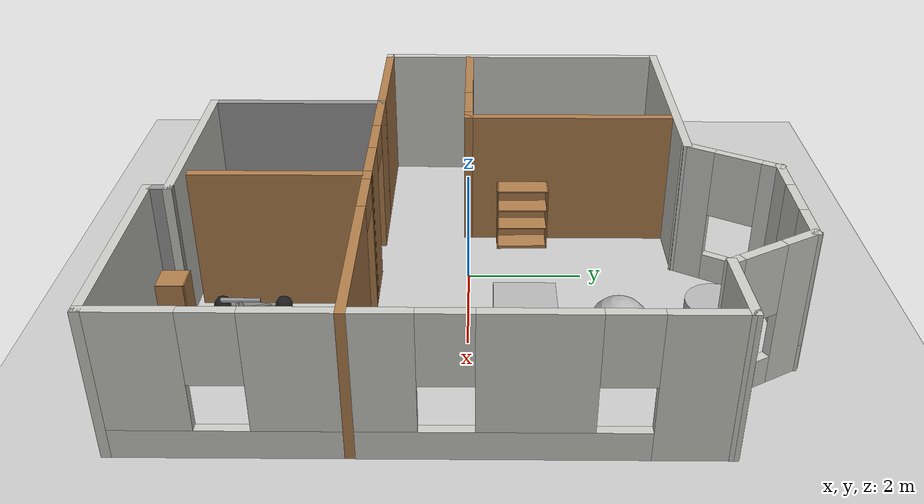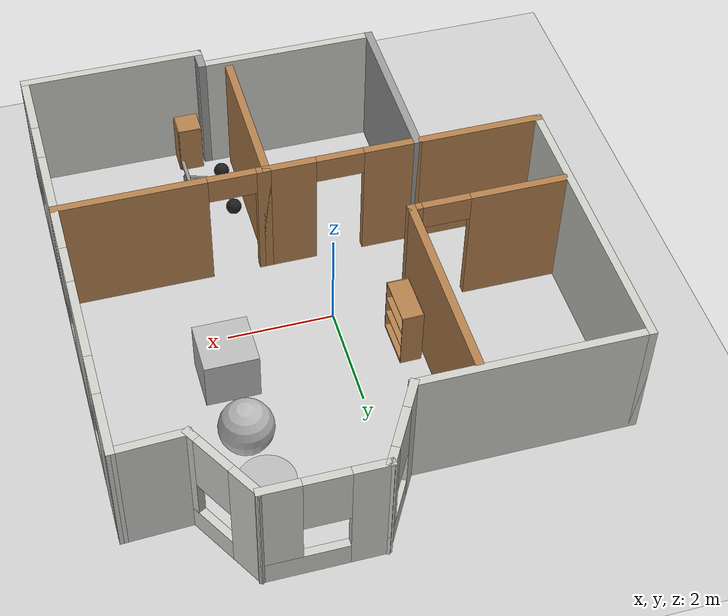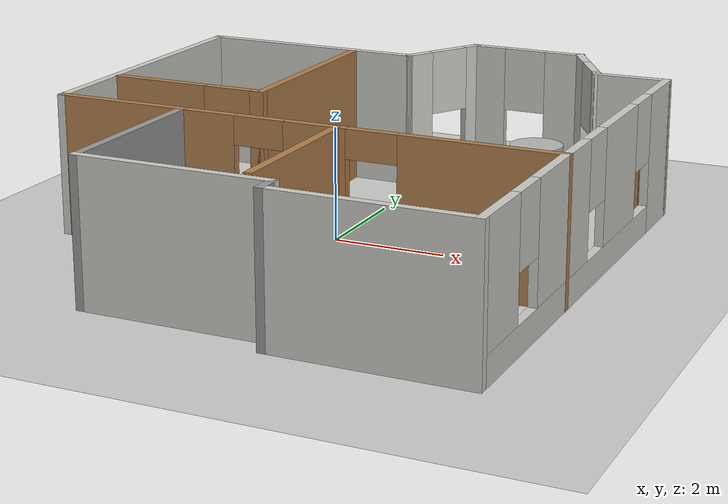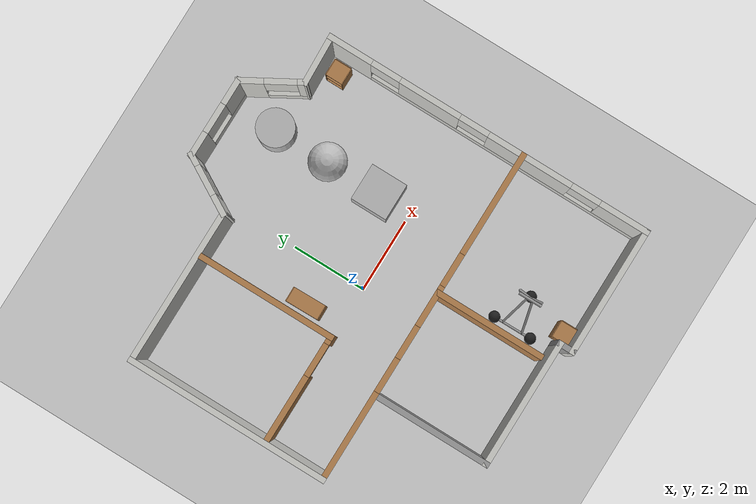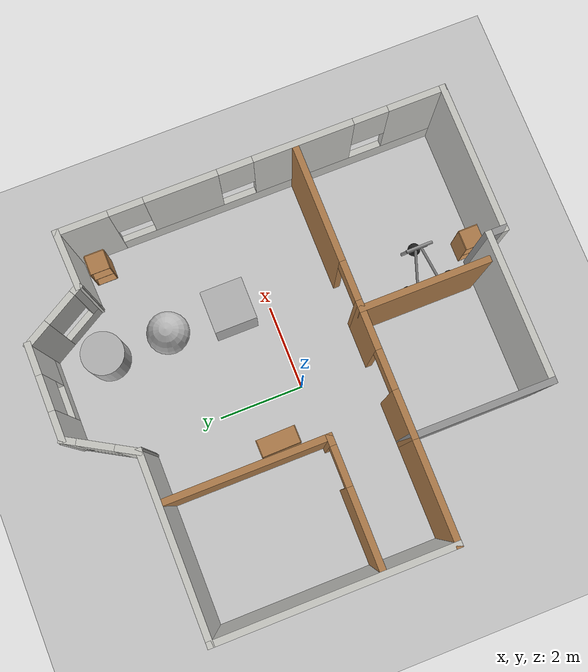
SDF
<sdf version="1.6">
 <world name="default">
  <light name="sun" type="directional">
   <pose>0 0 15 0 -0 0</pose>
   <diffuse>1 1 1 1</diffuse>
   <specular>0.1 0.1 0.1 1</specular>
   <attenuation>
    <range>1000</range>
    <constant>0.9</constant>
    <linear>0.01</linear>
    <quadratic>0.001</quadratic>
   </attenuation>
   <direction>-0.5 0.5 -1</direction>
  </light>
  <model name="ground_plane">
   <static>1</static>
   <link name="link">
    <collision name="collision">
     <geometry><plane><normal>0 0 1</normal><size>100 100</size></plane></geometry>
     <surface><friction><ode><mu>100</mu><mu2>50</mu2></ode></friction></surface>
    </collision>
    <visual name="visual">
     <cast_shadows>0</cast_shadows>
     <geometry><plane><normal>0 0 1</normal><size>100 100</size></plane></geometry>
     <material>
      <script><uri>file://media/materials/scripts/gazebo.material</uri><name>Gazebo/Grey</name></script>
     </material>
    </visual>
   </link>
  </model>
  <gravity>0 0 -9.8</gravity>
  <magnetic_field>6e-06 2.3e-05 -4.2e-05</magnetic_field>
  <atmosphere type="adiabatic"/>
  <physics name="default_physics" default="0" type="ode">
   <max_step_size>0.001</max_step_size>
   <real_time_factor>1</real_time_factor>
   <real_time_update_rate>1000</real_time_update_rate>
  </physics>
  <scene><ambient>0.4 0.4 0.4 1</ambient><background>0.7 0.7 0.7 1</background><shadows>1</shadows></scene>
  <spherical_coordinates>
   <surface_model>EARTH_WGS84</surface_model>
   <latitude_deg>0</latitude_deg>
   <longitude_deg>0</longitude_deg>
   <elevation>0</elevation>
   <heading_deg>0</heading_deg>
  </spherical_coordinates>
  <model name="badrs">
   <pose>0.14345 0.028465 0 0 -0 0</pose>
   <link name="Wall_21">
    <pose>4.52353 -0.681546 0 0 0 -1.5708</pose>
    <visual name="Wall_21_Visual_0">
     <pose>-3.88245 0 1.25 0 -0 0</pose>
     <geometry><box><size>1.2351 0.15 2.5</size></box></geometry>
     <material>
      <script><uri>file://media/materials/scripts/gazebo.material</uri><name>Gazebo/CeilingTiled</name></script>
      <ambient>1 1 1 1</ambient>
     </material>
     <meta><layer>0</layer></meta>
    </visual>
    <collision name="Wall_21_Collision_0">
     <geometry><box><size>1.2351 0.15 2.5</size></box></geometry>
     <pose>-3.88245 0 1.25 0 -0 0</pose>
    </collision>
    <visual name="Wall_21_Visual_1">
     <pose>0.617551 0 0.25 0 -0 0</pose>
     <geometry><box><size>7.7649 0.15 0.5</size></box></geometry>
     <material>
      <script><uri>file://media/materials/scripts/gazebo.material</uri><name>Gazebo/CeilingTiled</name></script>
      <ambient>1 1 1 1</ambient>
     </material>
     <meta><layer>0</layer></meta>
    </visual>
    <collision name="Wall_21_Collision_1">
     <geometry><box><size>7.7649 0.15 0.5</size></box></geometry>
     <pose>0.617551 0 0.25 0 -0 0</pose>
    </collision>
    <visual name="Wall_21_Visual_2">
     <pose>-1.62599 0 1.5 0 -0 0</pose>
     <geometry><box><size>1.67781 0.15 2</size></box></geometry>
     <material>
      <script><uri>file://media/materials/scripts/gazebo.material</uri><name>Gazebo/CeilingTiled</name></script>
      <ambient>1 1 1 1</ambient>
     </material>
     <meta><layer>0</layer></meta>
    </visual>
    <collision name="Wall_21_Collision_2">
     <geometry><box><size>1.67781 0.15 2</size></box></geometry>
     <pose>-1.62599 0 1.5 0 -0 0</pose>
    </collision>
    <visual name="Wall_21_Visual_3">
     <pose>1.17301 0 1.5 0 -0 0</pose>
     <geometry><box><size>2.3202 0.15 2</size></box></geometry>
     <material>
      <script><uri>file://media/materials/scripts/gazebo.material</uri><name>Gazebo/CeilingTiled</name></script>
      <ambient>1 1 1 1</ambient>
     </material>
     <meta><layer>0</layer></meta>
    </visual>
    <collision name="Wall_21_Collision_3">
     <geometry><box><size>2.3202 0.15 2</size></box></geometry>
     <pose>1.17301 0 1.5 0 -0 0</pose>
    </collision>
    <visual name="Wall_21_Visual_4">
     <pose>3.81656 0 1.5 0 -0 0</pose>
     <geometry><box><size>1.36689 0.15 2</size></box></geometry>
     <material>
      <script><uri>file://media/materials/scripts/gazebo.material</uri><name>Gazebo/CeilingTiled</name></script>
      <ambient>1 1 1 1</ambient>
     </material>
     <meta><layer>0</layer></meta>
    </visual>
    <collision name="Wall_21_Collision_4">
     <geometry><box><size>1.36689 0.15 2</size></box></geometry>
     <pose>3.81656 0 1.5 0 -0 0</pose>
    </collision>
    <visual name="Wall_21_Visual_5">
     <pose>-2.8649 0 1.9 0 -0 0</pose>
     <geometry><box><size>0.8 0.15 1.2</size></box></geometry>
     <material>
      <script><uri>file://media/materials/scripts/gazebo.material</uri><name>Gazebo/CeilingTiled</name></script>
      <ambient>1 1 1 1</ambient>
     </material>
     <meta><layer>0</layer></meta>
    </visual>
    <collision name="Wall_21_Collision_5">
     <geometry><box><size>0.8 0.15 1.2</size></box></geometry>
     <pose>-2.8649 0 1.9 0 -0 0</pose>
    </collision>
    <visual name="Wall_21_Visual_6">
     <pose>-0.38709 0 1.9 0 -0 0</pose>
     <geometry><box><size>0.8 0.15 1.2</size></box></geometry>
     <material>
      <script><uri>file://media/materials/scripts/gazebo.material</uri><name>Gazebo/CeilingTiled</name></script>
      <ambient>1 1 1 1</ambient>
     </material>
     <meta><layer>0</layer></meta>
    </visual>
    <collision name="Wall_21_Collision_6">
     <geometry><box><size>0.8 0.15 1.2</size></box></geometry>
     <pose>-0.38709 0 1.9 0 -0 0</pose>
    </collision>
    <visual name="Wall_21_Visual_7">
     <pose>2.73311 0 1.9 0 -0 0</pose>
     <geometry><box><size>0.8 0.15 1.2</size></box></geometry>
     <material>
      <script><uri>file://media/materials/scripts/gazebo.material</uri><name>Gazebo/CeilingTiled</name></script>
      <ambient>1 1 1 1</ambient>
     </material>
     <meta><layer>0</layer></meta>
    </visual>
    <collision name="Wall_21_Collision_7">
     <geometry><box><size>0.8 0.15 1.2</size></box></geometry>
     <pose>2.73311 0 1.9 0 -0 0</pose>
    </collision>
   </link>
   <link name="Wall_22">
    <collision name="Wall_22_Collision">
     <geometry><box><size>3.5 0.15 2.5</size></box></geometry>
     <pose>0 0 1.25 0 -0 0</pose>
    </collision>
    <visual name="Wall_22_Visual">
     <pose>0 0 1.25 0 -0 0</pose>
     <geometry><box><size>3.5 0.15 2.5</size></box></geometry>
     <material>
      <script><uri>file://media/materials/scripts/gazebo.material</uri><name>Gazebo/CeilingTiled</name></script>
      <ambient>1 1 1 1</ambient>
     </material>
     <meta><layer>0</layer></meta>
    </visual>
    <pose>2.84853 -5.10655 0 0 -0 3.14159</pose>
   </link>
   <link name="Wall_23">
    <collision name="Wall_23_Collision">
     <geometry><box><size>0.5 0.15 2.5</size></box></geometry>
     <pose>0 0 1.25 0 -0 0</pose>
    </collision>
    <visual name="Wall_23_Visual">
     <pose>0 0 1.25 0 -0 0</pose>
     <geometry><box><size>0.5 0.15 2.5</size></box></geometry>
     <material>
      <script><uri>file://media/materials/scripts/gazebo.material</uri><name>Gazebo/Grey</name></script>
      <ambient>1 1 1 1</ambient>
     </material>
     <meta><layer>0</layer></meta>
    </visual>
    <pose>1.17353 -4.93155 0 0 -0 1.5708</pose>
   </link>
   <link name="Wall_24">
    <collision name="Wall_24_Collision">
     <geometry><box><size>3.5 0.15 2.5</size></box></geometry>
     <pose>0 0 1.25 0 -0 0</pose>
    </collision>
    <visual name="Wall_24_Visual">
     <pose>0 0 1.25 0 -0 0</pose>
     <geometry><box><size>3.5 0.15 2.5</size></box></geometry>
     <material>
      <script><uri>file://media/materials/scripts/gazebo.material</uri><name>Gazebo/CeilingTiled</name></script>
      <ambient>1 1 1 1</ambient>
     </material>
     <meta><layer>0</layer></meta>
    </visual>
    <pose>-0.501469 -4.75655 0 0 -0 3.14159</pose>
   </link>
   <link name="Wall_25">
    <collision name="Wall_25_Collision">
     <geometry><box><size>3.25 0.15 2.5</size></box></geometry>
     <pose>0 0 1.25 0 -0 0</pose>
    </collision>
    <visual name="Wall_25_Visual">
     <pose>0 0 1.25 0 -0 0</pose>
     <geometry><box><size>3.25 0.15 2.5</size></box></geometry>
     <material>
      <script><uri>file://media/materials/scripts/gazebo.material</uri><name>Gazebo/Grey</name></script>
      <ambient>1 1 1 1</ambient>
     </material>
     <meta><layer>0</layer></meta>
    </visual>
    <pose>-2.17647 -3.20655 0 0 -0 1.5708</pose>
   </link>
   <link name="Wall_26">
    <pose>-0.751469 -1.65655 0 0 -0 0</pose>
    <visual name="Wall_26_Visual_0">
     <pose>-0.952965 0 1.25 0 -0 0</pose>
     <geometry><box><size>1.09407 0.15 2.5</size></box></geometry>
     <material>
      <script><uri>file://media/materials/scripts/gazebo.material</uri><name>Gazebo/Wood</name></script>
      <ambient>1 1 1 1</ambient>
     </material>
     <meta><layer>0</layer></meta>
    </visual>
    <collision name="Wall_26_Collision_0">
     <geometry><box><size>1.09407 0.15 2.5</size></box></geometry>
     <pose>-0.952965 0 1.25 0 -0 0</pose>
    </collision>
    <visual name="Wall_26_Visual_1">
     <pose>0.997035 0 1.25 0 -0 0</pose>
     <geometry><box><size>1.00593 0.15 2.5</size></box></geometry>
     <material>
      <script><uri>file://media/materials/scripts/gazebo.material</uri><name>Gazebo/Wood</name></script>
      <ambient>1 1 1 1</ambient>
     </material>
     <meta><layer>0</layer></meta>
    </visual>
    <collision name="Wall_26_Collision_1">
     <geometry><box><size>1.00593 0.15 2.5</size></box></geometry>
     <pose>0.997035 0 1.25 0 -0 0</pose>
    </collision>
    <visual name="Wall_26_Visual_2">
     <pose>0.044071 0 2.25 0 -0 0</pose>
     <geometry><box><size>0.9 0.15 0.5</size></box></geometry>
     <material>
      <script><uri>file://media/materials/scripts/gazebo.material</uri><name>Gazebo/Wood</name></script>
      <ambient>1 1 1 1</ambient>
     </material>
     <meta><layer>0</layer></meta>
    </visual>
    <collision name="Wall_26_Collision_2">
     <geometry><box><size>0.9 0.15 0.5</size></box></geometry>
     <pose>0.044071 0 2.25 0 -0 0</pose>
    </collision>
   </link>
   <link name="Wall_27">
    <collision name="Wall_27_Collision">
     <geometry><box><size>3 0.15 2.5</size></box></geometry>
     <pose>0 0 1.25 0 -0 0</pose>
    </collision>
    <visual name="Wall_27_Visual">
     <pose>0 0 1.25 0 -0 0</pose>
     <geometry><box><size>3 0.15 2.5</size></box></geometry>
     <material>
      <script><uri>file://media/materials/scripts/gazebo.material</uri><name>Gazebo/Wood</name></script>
      <ambient>1 1 1 1</ambient>
     </material>
     <meta><layer>0</layer></meta>
    </visual>
    <pose>0.673531 -3.08155 0 0 0 -1.5708</pose>
   </link>
   <link name="Wall_29">
    <collision name="Wall_29_Collision">
     <geometry><box><size>2.5 0.15 2.5</size></box></geometry>
     <pose>0 0 1.25 0 -0 0</pose>
    </collision>
    <visual name="Wall_29_Visual">
     <pose>0 0 1.25 0 -0 0</pose>
     <geometry><box><size>2.5 0.15 2.5</size></box></geometry>
     <material>
      <script><uri>file://media/materials/scripts/gazebo.material</uri><name>Gazebo/Wood</name></script>
      <ambient>1 1 1 1</ambient>
     </material>
     <meta><layer>0</layer></meta>
    </visual>
    <pose>-3.35147 -1.65655 0 0 -0 3.14159</pose>
   </link>
   <link name="Wall_30">
    <collision name="Wall_30_Collision">
     <geometry><box><size>5.5 0.15 2.5</size></box></geometry>
     <pose>0 0 1.25 0 -0 0</pose>
    </collision>
    <visual name="Wall_30_Visual">
     <pose>0 0 1.25 0 -0 0</pose>
     <geometry><box><size>5.5 0.15 2.5</size></box></geometry>
     <material>
      <script><uri>file://media/materials/scripts/gazebo.material</uri><name>Gazebo/CeilingTiled</name></script>
      <ambient>1 1 1 1</ambient>
     </material>
     <meta><layer>0</layer></meta>
    </visual>
    <pose>-4.52647 1.01845 0 0 -0 1.5708</pose>
   </link>
   <link name="Wall_31">
    <collision name="Wall_31_Collision">
     <geometry><box><size>4.25 0.15 2.5</size></box></geometry>
     <pose>0 0 1.25 0 -0 0</pose>
    </collision>
    <visual name="Wall_31_Visual">
     <pose>0 0 1.25 0 -0 0</pose>
     <geometry><box><size>4.25 0.15 2.5</size></box></geometry>
     <material>
      <script><uri>file://media/materials/scripts/gazebo.material</uri><name>Gazebo/CeilingTiled</name></script>
      <ambient>1 1 1 1</ambient>
     </material>
     <meta><layer>0</layer></meta>
    </visual>
    <pose>-2.47647 3.69345 0 0 -0 0</pose>
   </link>
   <link name="Wall_32">
    <pose>-0.026469 4.38627 0 0 -0 1.0472</pose>
    <visual name="Wall_32_Visual_0">
     <pose>-0.584637 0 1.25 0 -0 0</pose>
     <geometry><box><size>0.580725 0.15 2.5</size></box></geometry>
     <material>
      <script><uri>file://media/materials/scripts/gazebo.material</uri><name>Gazebo/CeilingTiled</name></script>
      <ambient>1 1 1 1</ambient>
     </material>
     <meta><layer>0</layer></meta>
    </visual>
    <collision name="Wall_32_Collision_0">
     <geometry><box><size>0.580725 0.15 2.5</size></box></geometry>
     <pose>-0.584637 0 1.25 0 -0 0</pose>
    </collision>
    <visual name="Wall_32_Visual_1">
     <pose>0.290363 0 0.25 0 -0 0</pose>
     <geometry><box><size>1.16928 0.15 0.5</size></box></geometry>
     <material>
      <script><uri>file://media/materials/scripts/gazebo.material</uri><name>Gazebo/CeilingTiled</name></script>
      <ambient>1 1 1 1</ambient>
     </material>
     <meta><layer>0</layer></meta>
    </visual>
    <collision name="Wall_32_Collision_1">
     <geometry><box><size>1.16928 0.15 0.5</size></box></geometry>
     <pose>0.290363 0 0.25 0 -0 0</pose>
    </collision>
    <visual name="Wall_32_Visual_2">
     <pose>0.690363 0 1.5 0 -0 0</pose>
     <geometry><box><size>0.369275 0.15 2</size></box></geometry>
     <material>
      <script><uri>file://media/materials/scripts/gazebo.material</uri><name>Gazebo/CeilingTiled</name></script>
      <ambient>1 1 1 1</ambient>
     </material>
     <meta><layer>0</layer></meta>
    </visual>
    <collision name="Wall_32_Collision_2">
     <geometry><box><size>0.369275 0.15 2</size></box></geometry>
     <pose>0.690363 0 1.5 0 -0 0</pose>
    </collision>
    <visual name="Wall_32_Visual_3">
     <pose>0.105725 0 1.9 0 -0 0</pose>
     <geometry><box><size>0.8 0.15 1.2</size></box></geometry>
     <material>
      <script><uri>file://media/materials/scripts/gazebo.material</uri><name>Gazebo/CeilingTiled</name></script>
      <ambient>1 1 1 1</ambient>
     </material>
     <meta><layer>0</layer></meta>
    </visual>
    <collision name="Wall_32_Collision_3">
     <geometry><box><size>0.8 0.15 1.2</size></box></geometry>
     <pose>0.105725 0 1.9 0 -0 0</pose>
    </collision>
   </link>
   <link name="Wall_33">
    <pose>1.42353 5.07909 0 0 -0 0</pose>
    <visual name="Wall_33_Visual_0">
     <pose>-0.772602 0 1.25 0 -0 0</pose>
     <geometry><box><size>0.704797 0.15 2.5</size></box></geometry>
     <material>
      <script><uri>file://media/materials/scripts/gazebo.material</uri><name>Gazebo/CeilingTiled</name></script>
      <ambient>1 1 1 1</ambient>
     </material>
     <meta><layer>0</layer></meta>
    </visual>
    <collision name="Wall_33_Collision_0">
     <geometry><box><size>0.704797 0.15 2.5</size></box></geometry>
     <pose>-0.772602 0 1.25 0 -0 0</pose>
    </collision>
    <visual name="Wall_33_Visual_1">
     <pose>0.352398 0 0.25 0 -0 0</pose>
     <geometry><box><size>1.5452 0.15 0.5</size></box></geometry>
     <material>
      <script><uri>file://media/materials/scripts/gazebo.material</uri><name>Gazebo/CeilingTiled</name></script>
      <ambient>1 1 1 1</ambient>
     </material>
     <meta><layer>0</layer></meta>
    </visual>
    <collision name="Wall_33_Collision_1">
     <geometry><box><size>1.5452 0.15 0.5</size></box></geometry>
     <pose>0.352398 0 0.25 0 -0 0</pose>
    </collision>
    <visual name="Wall_33_Visual_2">
     <pose>0.752398 0 1.5 0 -0 0</pose>
     <geometry><box><size>0.745203 0.15 2</size></box></geometry>
     <material>
      <script><uri>file://media/materials/scripts/gazebo.material</uri><name>Gazebo/CeilingTiled</name></script>
      <ambient>1 1 1 1</ambient>
     </material>
     <meta><layer>0</layer></meta>
    </visual>
    <collision name="Wall_33_Collision_2">
     <geometry><box><size>0.745203 0.15 2</size></box></geometry>
     <pose>0.752398 0 1.5 0 -0 0</pose>
    </collision>
    <visual name="Wall_33_Visual_3">
     <pose>-0.020203 0 1.9 0 -0 0</pose>
     <geometry><box><size>0.8 0.15 1.2</size></box></geometry>
     <material>
      <script><uri>file://media/materials/scripts/gazebo.material</uri><name>Gazebo/CeilingTiled</name></script>
      <ambient>1 1 1 1</ambient>
     </material>
     <meta><layer>0</layer></meta>
    </visual>
    <collision name="Wall_33_Collision_3">
     <geometry><box><size>0.8 0.15 1.2</size></box></geometry>
     <pose>-0.020203 0 1.9 0 -0 0</pose>
    </collision>
   </link>
   <link name="Wall_34">
    <pose>2.87353 4.38627 0 0 0 -1.0472</pose>
    <visual name="Wall_34_Visual_0">
     <pose>-0.531816 0 1.25 0 -0 0</pose>
     <geometry><box><size>0.686368 0.15 2.5</size></box></geometry>
     <material>
      <script><uri>file://media/materials/scripts/gazebo.material</uri><name>Gazebo/CeilingTiled</name></script>
      <ambient>1 1 1 1</ambient>
     </material>
     <meta><layer>0</layer></meta>
    </visual>
    <collision name="Wall_34_Collision_0">
     <geometry><box><size>0.686368 0.15 2.5</size></box></geometry>
     <pose>-0.531816 0 1.25 0 -0 0</pose>
    </collision>
    <visual name="Wall_34_Visual_1">
     <pose>0.343184 0 0.25 0 -0 0</pose>
     <geometry><box><size>1.06363 0.15 0.5</size></box></geometry>
     <material>
      <script><uri>file://media/materials/scripts/gazebo.material</uri><name>Gazebo/CeilingTiled</name></script>
      <ambient>1 1 1 1</ambient>
     </material>
     <meta><layer>0</layer></meta>
    </visual>
    <collision name="Wall_34_Collision_1">
     <geometry><box><size>1.06363 0.15 0.5</size></box></geometry>
     <pose>0.343184 0 0.25 0 -0 0</pose>
    </collision>
    <visual name="Wall_34_Visual_2">
     <pose>0.743184 0 1.5 0 -0 0</pose>
     <geometry><box><size>0.263632 0.15 2</size></box></geometry>
     <material>
      <script><uri>file://media/materials/scripts/gazebo.material</uri><name>Gazebo/CeilingTiled</name></script>
      <ambient>1 1 1 1</ambient>
     </material>
     <meta><layer>0</layer></meta>
    </visual>
    <collision name="Wall_34_Collision_2">
     <geometry><box><size>0.263632 0.15 2</size></box></geometry>
     <pose>0.743184 0 1.5 0 -0 0</pose>
    </collision>
    <visual name="Wall_34_Visual_3">
     <pose>0.211368 0 1.9 0 -0 0</pose>
     <geometry><box><size>0.8 0.15 1.2</size></box></geometry>
     <material>
      <script><uri>file://media/materials/scripts/gazebo.material</uri><name>Gazebo/CeilingTiled</name></script>
      <ambient>1 1 1 1</ambient>
     </material>
     <meta><layer>0</layer></meta>
    </visual>
    <collision name="Wall_34_Collision_3">
     <geometry><box><size>0.8 0.15 1.2</size></box></geometry>
     <pose>0.211368 0 1.9 0 -0 0</pose>
    </collision>
   </link>
   <link name="Wall_35">
    <collision name="Wall_35_Collision">
     <geometry><box><size>1.401 0.15 2.5</size></box></geometry>
     <pose>0 0 1.25 0 -0 0</pose>
    </collision>
    <visual name="Wall_35_Visual">
     <pose>0 0 1.25 0 -0 0</pose>
     <geometry><box><size>1.401 0.15 2.5</size></box></geometry>
     <material>
      <script><uri>file://media/materials/scripts/gazebo.material</uri><name>Gazebo/CeilingTiled</name></script>
      <ambient>1 1 1 1</ambient>
     </material>
     <meta><layer>0</layer></meta>
    </visual>
    <pose>3.89853 3.71845 0 0 -0 0.039979</pose>
   </link>
   <link name="Wall_37">
    <collision name="Wall_37_Collision">
     <geometry><box><size>3.75 0.15 2.5</size></box></geometry>
     <pose>0 0 1.25 0 -0 0</pose>
    </collision>
    <visual name="Wall_37_Visual">
     <pose>0 0 1.25 0 -0 0</pose>
     <geometry><box><size>3.75 0.15 2.5</size></box></geometry>
     <material>
      <script><uri>file://media/materials/scripts/gazebo.material</uri><name>Gazebo/Wood</name></script>
      <ambient>1 1 1 1</ambient>
     </material>
     <meta><layer>0</layer></meta>
    </visual>
    <pose>-1.56392 1.75991 0 0 0 -1.5708</pose>
   </link>
   <link name="Wall_38">
    <pose>-2.98892 -0.040087 0 0 -0 3.14159</pose>
    <visual name="Wall_38_Visual_0">
     <pose>-1.3663 0 1.25 0 -0 0</pose>
     <geometry><box><size>0.267395 0.15 2.5</size></box></geometry>
     <material>
      <script><uri>file://media/materials/scripts/gazebo.material</uri><name>Gazebo/Wood</name></script>
      <ambient>1 1 1 1</ambient>
     </material>
     <meta><layer>0</layer></meta>
    </visual>
    <collision name="Wall_38_Collision_0">
     <geometry><box><size>0.267395 0.15 2.5</size></box></geometry>
     <pose>-1.3663 0 1.25 0 -0 0</pose>
    </collision>
    <visual name="Wall_38_Visual_1">
     <pose>0.583697 0 1.25 0 -0 0</pose>
     <geometry><box><size>1.83261 0.15 2.5</size></box></geometry>
     <material>
      <script><uri>file://media/materials/scripts/gazebo.material</uri><name>Gazebo/Wood</name></script>
      <ambient>1 1 1 1</ambient>
     </material>
     <meta><layer>0</layer></meta>
    </visual>
    <collision name="Wall_38_Collision_1">
     <geometry><box><size>1.83261 0.15 2.5</size></box></geometry>
     <pose>0.583697 0 1.25 0 -0 0</pose>
    </collision>
    <visual name="Wall_38_Visual_2">
     <pose>-0.782605 0 2.25 0 -0 0</pose>
     <geometry><box><size>0.9 0.15 0.5</size></box></geometry>
     <material>
      <script><uri>file://media/materials/scripts/gazebo.material</uri><name>Gazebo/Wood</name></script>
      <ambient>1 1 1 1</ambient>
     </material>
     <meta><layer>0</layer></meta>
    </visual>
    <collision name="Wall_38_Collision_2">
     <geometry><box><size>0.9 0.15 0.5</size></box></geometry>
     <pose>-0.782605 0 2.25 0 -0 0</pose>
    </collision>
   </link>
   <link name="Wall_41">
    <pose>2.59853 -1.65655 0 0 -0 0</pose>
    <visual name="Wall_41_Visual_0">
     <pose>-1.86849 0 1.25 0 -0 0</pose>
     <geometry><box><size>0.263026 0.15 2.5</size></box></geometry>
     <material>
      <script><uri>file://media/materials/scripts/gazebo.material</uri><name>Gazebo/Wood</name></script>
      <ambient>1 1 1 1</ambient>
     </material>
     <meta><layer>0</layer></meta>
    </visual>
    <collision name="Wall_41_Collision_0">
     <geometry><box><size>0.263026 0.15 2.5</size></box></geometry>
     <pose>-1.86849 0 1.25 0 -0 0</pose>
    </collision>
    <visual name="Wall_41_Visual_1">
     <pose>0.581513 0 1.25 0 -0 0</pose>
     <geometry><box><size>2.83697 0.15 2.5</size></box></geometry>
     <material>
      <script><uri>file://media/materials/scripts/gazebo.material</uri><name>Gazebo/Wood</name></script>
      <ambient>1 1 1 1</ambient>
     </material>
     <meta><layer>0</layer></meta>
    </visual>
    <collision name="Wall_41_Collision_1">
     <geometry><box><size>2.83697 0.15 2.5</size></box></geometry>
     <pose>0.581513 0 1.25 0 -0 0</pose>
    </collision>
    <visual name="Wall_41_Visual_2">
     <pose>-1.28697 0 2.25 0 -0 0</pose>
     <geometry><box><size>0.9 0.15 0.5</size></box></geometry>
     <material>
      <script><uri>file://media/materials/scripts/gazebo.material</uri><name>Gazebo/Wood</name></script>
      <ambient>1 1 1 1</ambient>
     </material>
     <meta><layer>0</layer></meta>
    </visual>
    <collision name="Wall_41_Collision_2">
     <geometry><box><size>0.9 0.15 0.5</size></box></geometry>
     <pose>-1.28697 0 2.25 0 -0 0</pose>
    </collision>
   </link>
   <static>1</static>
  </model>
  <model name="cabinet">
   <static>1</static>
   <link name="cabinet_bottom_plate">
    <inertial>
     <pose>0 0 -1 0 -0 0</pose>
     <inertia><ixx>2.05</ixx><ixy>0</ixy><ixz>0</ixz><iyy>2.05</iyy><iyz>0</iyz><izz>2.05</izz></inertia>
     <mass>25</mass>
    </inertial>
    <collision name="cabinet_bottom_plate_geom">
     <pose>0 0 0.01 0 -0 0</pose>
     <geometry><box><size>0.45 0.45 0.02</size></box></geometry>
    </collision>
    <visual name="cabinet_bottom_plate_geom_visual">
     <pose>0 0 0.01 0 -0 0</pose>
     <geometry><box><size>0.45 0.45 0.02</size></box></geometry>
     <material>
      <script><uri>file://media/materials/scripts/gazebo.material</uri><name>Gazebo/Wood</name></script>
     </material>
    </visual>
    <collision name="cabinet_bottom_plate_geom_cabinet_back_plate">
     <pose>0.235 0 0.51 0 -0 0</pose>
     <geometry><box><size>0.02 0.45 1.02</size></box></geometry>
    </collision>
    <visual name="cabinet_bottom_plate_geom_cabinet_back_plate_visual">
     <pose>0.235 0 0.51 0 -0 0</pose>
     <geometry><box><size>0.02 0.45 1.02</size></box></geometry>
     <material>
      <script><uri>file://media/materials/scripts/gazebo.material</uri><name>Gazebo/Wood</name></script>
     </material>
    </visual>
    <collision name="cabinet_bottom_plate_geom_cabinet_left_plate">
     <pose>0 0.235 0.51 0 -0 0</pose>
     <geometry><box><size>0.45 0.02 1.02</size></box></geometry>
    </collision>
    <visual name="cabinet_bottom_plate_geom_cabinet_left_plate_visual">
     <pose>0 0.235 0.51 0 -0 0</pose>
     <geometry><box><size>0.45 0.02 1.02</size></box></geometry>
     <material>
      <script><uri>file://media/materials/scripts/gazebo.material</uri><name>Gazebo/Wood</name></script>
     </material>
    </visual>
    <collision name="cabinet_bottom_plate_geom_cabinet_middle_plate">
     <pose>0 0 0.51 0 -0 0</pose>
     <geometry><box><size>0.45 0.45 0.02</size></box></geometry>
    </collision>
    <visual name="cabinet_bottom_plate_geom_cabinet_middle_plate_visual">
     <pose>0 0 0.51 0 -0 0</pose>
     <geometry><box><size>0.45 0.45 0.02</size></box></geometry>
     <material>
      <script><uri>file://media/materials/scripts/gazebo.material</uri><name>Gazebo/Wood</name></script>
     </material>
    </visual>
    <collision name="cabinet_bottom_plate_geom_cabinet_right_plate">
     <pose>0 -0.235 0.51 0 -0 0</pose>
     <geometry><box><size>0.45 0.02 1.02</size></box></geometry>
    </collision>
    <visual name="cabinet_bottom_plate_geom_cabinet_right_plate_visual">
     <pose>0 -0.235 0.51 0 -0 0</pose>
     <geometry><box><size>0.45 0.02 1.02</size></box></geometry>
     <material>
      <script><uri>file://media/materials/scripts/gazebo.material</uri><name>Gazebo/Wood</name></script>
     </material>
    </visual>
    <collision name="cabinet_bottom_plate_geom_cabinet_top_plate">
     <pose>0 0 1.01 0 -0 0</pose>
     <geometry><box><size>0.45 0.45 0.02</size></box></geometry>
    </collision>
    <visual name="cabinet_bottom_plate_geom_cabinet_top_plate_visual">
     <pose>0 0 1.01 0 -0 0</pose>
     <geometry><box><size>0.45 0.45 0.02</size></box></geometry>
     <material>
      <script><uri>file://media/materials/scripts/gazebo.material</uri><name>Gazebo/Wood</name></script>
     </material>
    </visual>
   </link>
   <pose>1.66738 -4.78154 0 0 -0 0</pose>
  </model>
  <model name="bookshelf">
   <static>1</static>
   <link name="link">
    <inertial><mass>1</mass></inertial>
    <collision name="back">
     <pose>0 0.005 0.6 0 -0 0</pose>
     <geometry><box><size>0.9 0.01 1.2</size></box></geometry>
    </collision>
    <visual name="visual1">
     <pose>0 0.005 0.6 0 -0 0</pose>
     <geometry><box><size>0.9 0.01 1.2</size></box></geometry>
     <material>
      <script><uri>file://media/materials/scripts/gazebo.material</uri><name>Gazebo/Wood</name></script>
     </material>
    </visual>
    <collision name="left_side">
     <pose>0.45 -0.195 0.6 0 -0 0</pose>
     <geometry><box><size>0.02 0.4 1.2</size></box></geometry>
    </collision>
    <visual name="visual2">
     <pose>0.45 -0.195 0.6 0 -0 0</pose>
     <geometry><box><size>0.02 0.4 1.2</size></box></geometry>
     <material>
      <script><uri>file://media/materials/scripts/gazebo.material</uri><name>Gazebo/Wood</name></script>
     </material>
    </visual>
    <collision name="right_side">
     <pose>-0.45 -0.195 0.6 0 -0 0</pose>
     <geometry><box><size>0.02 0.4 1.2</size></box></geometry>
    </collision>
    <visual name="visual3">
     <pose>-0.45 -0.195 0.6 0 -0 0</pose>
     <geometry><box><size>0.02 0.4 1.2</size></box></geometry>
     <material>
      <script><uri>file://media/materials/scripts/gazebo.material</uri><name>Gazebo/Wood</name></script>
     </material>
    </visual>
    <collision name="bottom">
     <pose>0 -0.195 0.03 0 -0 0</pose>
     <geometry><box><size>0.88 0.4 0.06</size></box></geometry>
    </collision>
    <visual name="visual4">
     <pose>0 -0.195 0.03 0 -0 0</pose>
     <geometry><box><size>0.88 0.4 0.06</size></box></geometry>
     <material>
      <script><uri>file://media/materials/scripts/gazebo.material</uri><name>Gazebo/Wood</name></script>
     </material>
    </visual>
    <collision name="top">
     <pose>0 -0.195 1.19 0 -0 0</pose>
     <geometry><box><size>0.88 0.4 0.02</size></box></geometry>
    </collision>
    <visual name="visual5">
     <pose>0 -0.195 1.19 0 -0 0</pose>
     <geometry><box><size>0.88 0.4 0.02</size></box></geometry>
     <material>
      <script><uri>file://media/materials/scripts/gazebo.material</uri><name>Gazebo/Wood</name></script>
     </material>
    </visual>
    <collision name="low_shelf">
     <pose>0 -0.195 0.43 0 -0 0</pose>
     <geometry><box><size>0.88 0.4 0.02</size></box></geometry>
    </collision>
    <visual name="visual6">
     <pose>0 -0.195 0.43 0 -0 0</pose>
     <geometry><box><size>0.88 0.4 0.02</size></box></geometry>
     <material>
      <script><uri>file://media/materials/scripts/gazebo.material</uri><name>Gazebo/Wood</name></script>
     </material>
    </visual>
    <collision name="high_shelf">
     <pose>0 -0.195 0.8 0 -0 0</pose>
     <geometry><box><size>0.88 0.4 0.02</size></box></geometry>
    </collision>
    <visual name="visual7">
     <pose>0 -0.195 0.8 0 -0 0</pose>
     <geometry><box><size>0.88 0.4 0.02</size></box></geometry>
     <material>
      <script><uri>file://media/materials/scripts/gazebo.material</uri><name>Gazebo/Wood</name></script>
     </material>
    </visual>
   </link>
   <pose>-1.24281 0.975028 0.065504 0 -0 1.58566</pose>
  </model>
  <model name="cabinet_0">
   <static>1</static>
   <link name="cabinet_bottom_plate">
    <inertial>
     <pose>0 0 -1 0 -0 0</pose>
     <inertia><ixx>2.05</ixx><ixy>0</ixy><ixz>0</ixz><iyy>2.05</iyy><iyz>0</iyz><izz>2.05</izz></inertia>
     <mass>25</mass>
    </inertial>
    <collision name="cabinet_bottom_plate_geom">
     <pose>0 0 0.01 0 -0 0</pose>
     <geometry><box><size>0.45 0.45 0.02</size></box></geometry>
    </collision>
    <visual name="cabinet_bottom_plate_geom_visual">
     <pose>0 0 0.01 0 -0 0</pose>
     <geometry><box><size>0.45 0.45 0.02</size></box></geometry>
     <material>
      <script><uri>file://media/materials/scripts/gazebo.material</uri><name>Gazebo/Wood</name></script>
     </material>
    </visual>
    <collision name="cabinet_bottom_plate_geom_cabinet_back_plate">
     <pose>0.235 0 0.51 0 -0 0</pose>
     <geometry><box><size>0.02 0.45 1.02</size></box></geometry>
    </collision>
    <visual name="cabinet_bottom_plate_geom_cabinet_back_plate_visual">
     <pose>0.235 0 0.51 0 -0 0</pose>
     <geometry><box><size>0.02 0.45 1.02</size></box></geometry>
     <material>
      <script><uri>file://media/materials/scripts/gazebo.material</uri><name>Gazebo/Wood</name></script>
     </material>
    </visual>
    <collision name="cabinet_bottom_plate_geom_cabinet_left_plate">
     <pose>0 0.235 0.51 0 -0 0</pose>
     <geometry><box><size>0.45 0.02 1.02</size></box></geometry>
    </collision>
    <visual name="cabinet_bottom_plate_geom_cabinet_left_plate_visual">
     <pose>0 0.235 0.51 0 -0 0</pose>
     <geometry><box><size>0.45 0.02 1.02</size></box></geometry>
     <material>
      <script><uri>file://media/materials/scripts/gazebo.material</uri><name>Gazebo/Wood</name></script>
     </material>
    </visual>
    <collision name="cabinet_bottom_plate_geom_cabinet_middle_plate">
     <pose>0 0 0.51 0 -0 0</pose>
     <geometry><box><size>0.45 0.45 0.02</size></box></geometry>
    </collision>
    <visual name="cabinet_bottom_plate_geom_cabinet_middle_plate_visual">
     <pose>0 0 0.51 0 -0 0</pose>
     <geometry><box><size>0.45 0.45 0.02</size></box></geometry>
     <material>
      <script><uri>file://media/materials/scripts/gazebo.material</uri><name>Gazebo/Wood</name></script>
     </material>
    </visual>
    <collision name="cabinet_bottom_plate_geom_cabinet_right_plate">
     <pose>0 -0.235 0.51 0 -0 0</pose>
     <geometry><box><size>0.45 0.02 1.02</size></box></geometry>
    </collision>
    <visual name="cabinet_bottom_plate_geom_cabinet_right_plate_visual">
     <pose>0 -0.235 0.51 0 -0 0</pose>
     <geometry><box><size>0.45 0.02 1.02</size></box></geometry>
     <material>
      <script><uri>file://media/materials/scripts/gazebo.material</uri><name>Gazebo/Wood</name></script>
     </material>
    </visual>
    <collision name="cabinet_bottom_plate_geom_cabinet_top_plate">
     <pose>0 0 1.01 0 -0 0</pose>
     <geometry><box><size>0.45 0.45 0.02</size></box></geometry>
    </collision>
    <visual name="cabinet_bottom_plate_geom_cabinet_top_plate_visual">
     <pose>0 0 1.01 0 -0 0</pose>
     <geometry><box><size>0.45 0.45 0.02</size></box></geometry>
     <material>
      <script><uri>file://media/materials/scripts/gazebo.material</uri><name>Gazebo/Wood</name></script>
     </material>
    </visual>
   </link>
   <pose>4.2117 3.31957 0 0 -0 0</pose>
  </model>
  <model name="trisphere_cycle">
   <link name="frame">
    <pose>-0.408559 0 0.385023 0 -0.522021 0</pose>
    <inertial>
     <mass>10</mass>
     <inertia><ixx>0.228</ixx><iyy>0.743521</iyy><izz>0.965521</izz><ixy>0</ixy><ixz>0</ixz><iyz>0</iyz></inertia>
    </inertial>
    <collision name="axle_collision">
     <pose>-0.471335 0 0 1.5708 -0 0</pose>
     <geometry><cylinder><length>1.03923</length><radius>0.03</radius></cylinder></geometry>
    </collision>
    <visual name="axle_visual">
     <pose>-0.471335 0 0 1.5708 -0 0</pose>
     <geometry><cylinder><length>1.03923</length><radius>0.03</radius></cylinder></geometry>
     <material>
      <script><uri>file://media/materials/scripts/gazebo.material</uri><name>Gazebo/Grey</name></script>
     </material>
    </visual>
    <collision name="frame_left_collision">
     <pose>0 0.171552 0 2.986 1.57079 2.76675</pose>
     <geometry><cylinder><length>1.00317</length><radius>0.03</radius></cylinder></geometry>
    </collision>
    <visual name="frame_left_visual">
     <pose>0 0.171552 0 2.986 1.57079 2.76675</pose>
     <geometry><cylinder><length>1.00317</length><radius>0.03</radius></cylinder></geometry>
     <material>
      <script><uri>file://media/materials/scripts/gazebo.material</uri><name>Gazebo/Grey</name></script>
     </material>
    </visual>
    <collision name="frame_right_collision">
     <pose>0 -0.171552 0 -2.986 1.57079 -2.76675</pose>
     <geometry><cylinder><length>1.00317</length><radius>0.03</radius></cylinder></geometry>
    </collision>
    <visual name="frame_right_visual">
     <pose>0 -0.171552 0 -2.986 1.57079 -2.76675</pose>
     <geometry><cylinder><length>1.00317</length><radius>0.03</radius></cylinder></geometry>
     <material>
      <script><uri>file://media/materials/scripts/gazebo.material</uri><name>Gazebo/Grey</name></script>
     </material>
    </visual>
   </link>
   <link name="fork">
    <pose>0.041441 0 0.385023 0 -0.174533 0</pose>
    <inertial>
     <mass>3</mass>
     <inertia>
      <ixx>0.158203</ixx>
      <iyy>0.0583594</iyy>
      <izz>0.102656</izz>
      <ixy>0</ixy>
      <ixz>0</ixz>
      <iyz>0</iyz>
     </inertia>
    </inertial>
    <collision name="handlebars_collision">
     <pose>0 0 0.397748 1.5708 -0 0</pose>
     <geometry><cylinder><length>0.636396</length><radius>0.0375</radius></cylinder></geometry>
    </collision>
    <visual name="handlebars_visual">
     <pose>0 0 0.397748 1.5708 -0 0</pose>
     <geometry><cylinder><length>0.636396</length><radius>0.0375</radius></cylinder></geometry>
     <material>
      <script><uri>file://media/materials/scripts/gazebo.material</uri><name>Gazebo/Grey</name></script>
     </material>
    </visual>
    <collision name="headtube_collision">
     <pose>0 0 0.238649 0 -0 0</pose>
     <geometry><cylinder><length>0.318198</length><radius>0.0375</radius></cylinder></geometry>
    </collision>
    <visual name="headtube_visual">
     <pose>0 0 0.238649 0 -0 0</pose>
     <geometry><cylinder><length>0.318198</length><radius>0.0375</radius></cylinder></geometry>
     <material>
      <script><uri>file://media/materials/scripts/gazebo.material</uri><name>Gazebo/Grey</name></script>
     </material>
    </visual>
    <collision name="spindle_collision">
     <pose>0 0 -0.238649 1.5708 -0 0</pose>
     <geometry><cylinder><length>0.636396</length><radius>0.015</radius></cylinder></geometry>
    </collision>
    <visual name="spindle_visual">
     <pose>0 0 -0.238649 1.5708 -0 0</pose>
     <geometry><cylinder><length>0.636396</length><radius>0.015</radius></cylinder></geometry>
     <material>
      <script><uri>file://media/materials/scripts/gazebo.material</uri><name>Gazebo/Grey</name></script>
     </material>
    </visual>
    <collision name="fork_left_collision">
     <pose>0 0.159099 -0.07955 0.785398 -0 0</pose>
     <geometry><cylinder><length>0.45</length><radius>0.0375</radius></cylinder></geometry>
    </collision>
    <visual name="fork_left_visual">
     <pose>0 0.159099 -0.07955 0.785398 -0 0</pose>
     <geometry><cylinder><length>0.45</length><radius>0.0375</radius></cylinder></geometry>
     <material>
      <script><uri>file://media/materials/scripts/gazebo.material</uri><name>Gazebo/Grey</name></script>
     </material>
    </visual>
    <collision name="fork_right_collision">
     <pose>0 -0.159099 -0.07955 -0.785398 0 0</pose>
     <geometry><cylinder><length>0.45</length><radius>0.0375</radius></cylinder></geometry>
    </collision>
    <visual name="fork_right_visual">
     <pose>0 -0.159099 -0.07955 -0.785398 0 0</pose>
     <geometry><cylinder><length>0.45</length><radius>0.0375</radius></cylinder></geometry>
     <material>
      <script><uri>file://media/materials/scripts/gazebo.material</uri><name>Gazebo/Grey</name></script>
     </material>
    </visual>
   </link>
   <link name="wheel_front">
    <pose>0.082882 0 0.15 0 -0 0</pose>
    <inertial>
     <mass>0.5</mass>
     <inertia><ixx>0.0045</ixx><iyy>0.0045</iyy><izz>0.0045</izz><ixy>0</ixy><ixz>0</ixz><iyz>0</iyz></inertia>
    </inertial>
    <collision name="collision">
     <geometry><sphere><radius>0.15</radius></sphere></geometry>
     <surface><contact><ode><kp>1e+08</kp><kd>1</kd><min_depth>0.0005</min_depth></ode></contact></surface>
    </collision>
    <visual name="visual">
     <geometry><sphere><radius>0.15</radius></sphere></geometry>
     <material>
      <script><uri>file://media/materials/scripts/gazebo.material</uri><name>Gazebo/Black</name></script>
     </material>
    </visual>
   </link>
   <joint name="wheel_front_steer" type="revolute">
    <parent>frame</parent>
    <child>fork</child>
    <axis>
     <xyz>0 0 1</xyz>
     <limit><lower>-0.959931</lower><upper>0.959931</upper></limit>
     <use_parent_model_frame>0</use_parent_model_frame>
     <dynamics><spring_reference>0</spring_reference><spring_stiffness>0</spring_stiffness></dynamics>
    </axis>
   </joint>
   <joint name="wheel_front_spin" type="revolute">
    <parent>fork</parent>
    <child>wheel_front</child>
    <axis>
     <xyz>0 1 0</xyz>
     <use_parent_model_frame>0</use_parent_model_frame>
     <limit><lower>-1e+16</lower><upper>1e+16</upper></limit>
     <dynamics><spring_reference>0</spring_reference><spring_stiffness>0</spring_stiffness></dynamics>
    </axis>
   </joint>
   <link name="wheel_rear_left">
    <pose>-0.817118 0.519615 0.15 0 -0 0</pose>
    <inertial>
     <mass>0.5</mass>
     <inertia><ixx>0.0045</ixx><iyy>0.0045</iyy><izz>0.0045</izz><ixy>0</ixy><ixz>0</ixz><iyz>0</iyz></inertia>
    </inertial>
    <collision name="collision">
     <geometry><sphere><radius>0.15</radius></sphere></geometry>
     <surface><contact><ode><kp>1e+08</kp><kd>1</kd><min_depth>0.0005</min_depth></ode></contact></surface>
    </collision>
    <visual name="visual">
     <geometry><sphere><radius>0.15</radius></sphere></geometry>
     <material>
      <script><uri>file://media/materials/scripts/gazebo.material</uri><name>Gazebo/Black</name></script>
     </material>
    </visual>
   </link>
   <joint name="wheel_rear_left_spin" type="revolute">
    <parent>frame</parent>
    <child>wheel_rear_left</child>
    <axis>
     <xyz>0 1 0</xyz>
     <use_parent_model_frame>0</use_parent_model_frame>
     <limit><lower>-1e+16</lower><upper>1e+16</upper></limit>
     <dynamics><spring_reference>0</spring_reference><spring_stiffness>0</spring_stiffness></dynamics>
    </axis>
   </joint>
   <link name="wheel_rear_right">
    <pose>-0.817118 -0.519615 0.15 0 -0 0</pose>
    <inertial>
     <mass>0.5</mass>
     <inertia><ixx>0.0045</ixx><iyy>0.0045</iyy><izz>0.0045</izz><ixy>0</ixy><ixz>0</ixz><iyz>0</iyz></inertia>
    </inertial>
    <collision name="collision">
     <geometry><sphere><radius>0.15</radius></sphere></geometry>
     <surface><contact><ode><kp>1e+08</kp><kd>1</kd><min_depth>0.0005</min_depth></ode></contact></surface>
    </collision>
    <visual name="visual">
     <geometry><sphere><radius>0.15</radius></sphere></geometry>
     <material>
      <script><uri>file://media/materials/scripts/gazebo.material</uri><name>Gazebo/Black</name></script>
     </material>
    </visual>
   </link>
   <joint name="wheel_rear_right_spin" type="revolute">
    <parent>frame</parent>
    <child>wheel_rear_right</child>
    <axis>
     <xyz>0 1 0</xyz>
     <use_parent_model_frame>0</use_parent_model_frame>
     <limit><lower>-1e+16</lower><upper>1e+16</upper></limit>
     <dynamics><spring_reference>0</spring_reference><spring_stiffness>0</spring_stiffness></dynamics>
    </axis>
   </joint>
   <pose>1.96853 -3.64153 -0.000501 0 1e-06 0.006304</pose>
  </model>
  <model name="textured_shapes">
   <pose>2.2231 2.41141 0.5 0 0 -5e-06</pose>
   <link name="box">
    <pose>0 -1.5 0 0 -0 0</pose>
    <collision name="collision"><geometry><box><size>1 1 1</size></box></geometry></collision>
    <visual name="visual">
     <geometry><box><size>1 1 1</size></box></geometry>
     <material>
      <script>
       <uri>model://textured_shapes/materials/scripts</uri>
       <uri>model://textured_shapes/materials/textures</uri>
       <name>TexturedShape/Squares</name>
      </script>
     </material>
    </visual>
    <inertial>
     <inertia><ixx>1</ixx><ixy>0</ixy><ixz>0</ixz><iyy>1</iyy><iyz>0</iyz><izz>1</izz></inertia>
     <mass>1</mass>
    </inertial>
   </link>
   <link name="sphere">
    <collision name="collision"><geometry><sphere><radius>0.5</radius></sphere></geometry></collision>
    <visual name="visual">
     <geometry><sphere><radius>0.5</radius></sphere></geometry>
     <material>
      <script>
       <uri>model://textured_shapes/materials/scripts</uri>
       <uri>model://textured_shapes/materials/textures</uri>
       <name>TexturedShape/Squares</name>
      </script>
     </material>
    </visual>
    <inertial>
     <inertia><ixx>1</ixx><ixy>0</ixy><ixz>0</ixz><iyy>1</iyy><iyz>0</iyz><izz>1</izz></inertia>
     <mass>1</mass>
    </inertial>
   </link>
   <link name="cylinder">
    <pose>0 1.5 0 0 -0 0</pose>
    <collision name="collision">
     <geometry><cylinder><radius>0.5</radius><length>1</length></cylinder></geometry>
    </collision>
    <visual name="visual">
     <geometry><cylinder><radius>0.5</radius><length>1</length></cylinder></geometry>
     <material>
      <script>
       <uri>model://textured_shapes/materials/scripts</uri>
       <uri>model://textured_shapes/materials/textures</uri>
       <name>TexturedShape/Squares</name>
      </script>
     </material>
    </visual>
    <inertial>
     <inertia><ixx>1</ixx><ixy>0</ixy><ixz>0</ixz><iyy>1</iyy><iyz>0</iyz><izz>1</izz></inertia>
     <mass>1</mass>
    </inertial>
   </link>
  </model>
 </world>
</sdf>
